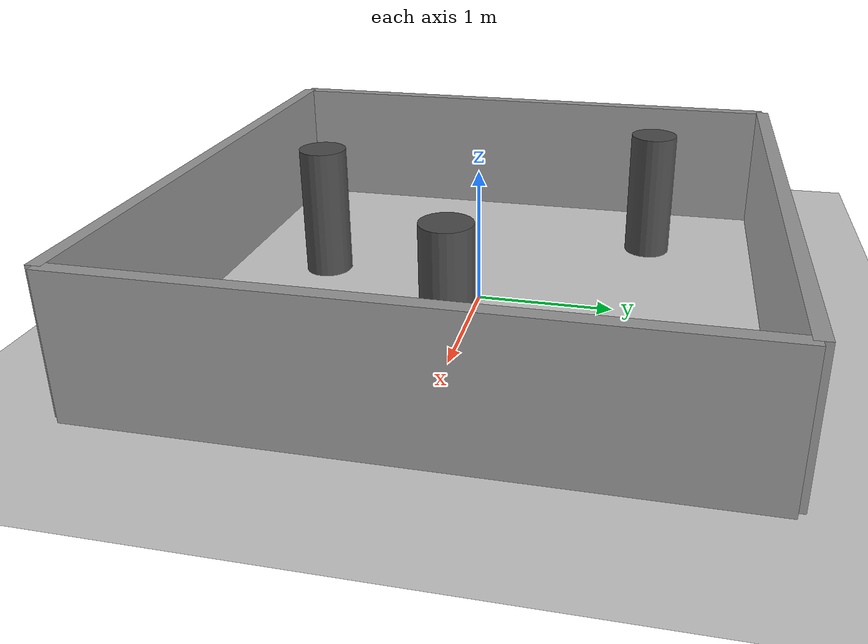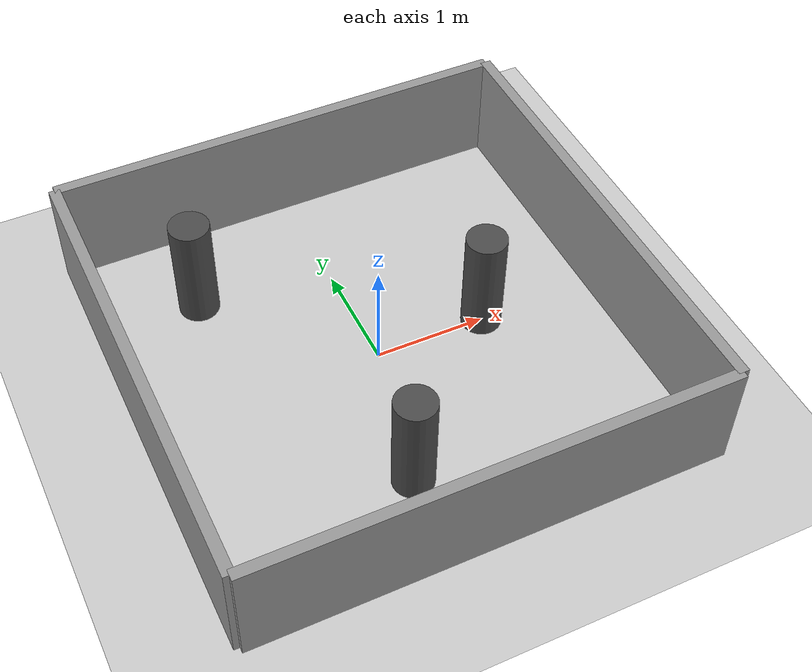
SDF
<?xml version="1.0" ?>
<sdf version="1.6">
  <world name="sparse">

    <physics type="ode">
      <real_time_update_rate>0.0</real_time_update_rate>
      <max_step_size>0.001</max_step_size>
      <real_time_factor>1.0</real_time_factor>
      <ode>
        <solver>
          <type>quick</type>
          <iters>150</iters>
          <precon_iters>0</precon_iters>
          <sor>1.400000</sor>
        </solver>
        <constraints>
          <cfm>0.00001</cfm>
          <erp>0.2</erp>
          <contact_max_correcting_vel>2000.000000</contact_max_correcting_vel>
          <contact_surface_layer>0.01000</contact_surface_layer>
        </constraints>
      </ode>
    </physics>

    <include><uri>model://sun</uri></include>
    <include><uri>model://ground_plane</uri></include>

    <!-- Bounding walls (4m x 4m arena) -->
    <model name="wall_north">
      <static>true</static><pose>0 2.1 0.5 0 0 0</pose>
      <link name="link">
        <collision name="col"><geometry><box><size>4.2 0.1 1.0</size></box></geometry></collision>
        <visual name="vis"><geometry><box><size>4.2 0.1 1.0</size></box></geometry>
          <material><script><name>Gazebo/Grey</name></script></material></visual>
      </link>
    </model>
    <model name="wall_south">
      <static>true</static><pose>0 -2.1 0.5 0 0 0</pose>
      <link name="link">
        <collision name="col"><geometry><box><size>4.2 0.1 1.0</size></box></geometry></collision>
        <visual name="vis"><geometry><box><size>4.2 0.1 1.0</size></box></geometry>
          <material><script><name>Gazebo/Grey</name></script></material></visual>
      </link>
    </model>
    <model name="wall_east">
      <static>true</static><pose>2.1 0 0.5 0 0 1.5708</pose>
      <link name="link">
        <collision name="col"><geometry><box><size>4.2 0.1 1.0</size></box></geometry></collision>
        <visual name="vis"><geometry><box><size>4.2 0.1 1.0</size></box></geometry>
          <material><script><name>Gazebo/Grey</name></script></material></visual>
      </link>
    </model>
    <model name="wall_west">
      <static>true</static><pose>-2.1 0 0.5 0 0 1.5708</pose>
      <link name="link">
        <collision name="col"><geometry><box><size>4.2 0.1 1.0</size></box></geometry></collision>
        <visual name="vis"><geometry><box><size>4.2 0.1 1.0</size></box></geometry>
          <material><script><name>Gazebo/Grey</name></script></material></visual>
      </link>
    </model>

    <!-- 3 obstáculos cilíndricos espalhados — ρ ≈ 0.10 -->
    <model name="obs_0">
      <static>true</static>
      <pose>-1.2 1.2 0.5 0 0 0</pose>
      <link name="link">
        <collision name="col"><geometry><cylinder><radius>0.18</radius><length>1.0</length></cylinder></geometry></collision>
        <visual name="vis"><geometry><cylinder><radius>0.18</radius><length>1.0</length></cylinder></geometry>
          <material><script><name>Gazebo/DarkGrey</name></script></material></visual>
      </link>
    </model>

    <model name="obs_1">
      <static>true</static>
      <pose>1.0 0.0 0.5 0 0 0</pose>
      <link name="link">
        <collision name="col"><geometry><cylinder><radius>0.18</radius><length>1.0</length></cylinder></geometry></collision>
        <visual name="vis"><geometry><cylinder><radius>0.18</radius><length>1.0</length></cylinder></geometry>
          <material><script><name>Gazebo/DarkGrey</name></script></material></visual>
      </link>
    </model>

    <model name="obs_2">
      <static>true</static>
      <pose>-0.3 -1.3 0.5 0 0 0</pose>
      <link name="link">
        <collision name="col"><geometry><cylinder><radius>0.18</radius><length>1.0</length></cylinder></geometry></collision>
        <visual name="vis"><geometry><cylinder><radius>0.18</radius><length>1.0</length></cylinder></geometry>
          <material><script><name>Gazebo/DarkGrey</name></script></material></visual>
      </link>
    </model>

    <gui fullscreen="0">
      <camera name="user_camera">
        <pose>0 0 8 0 1.5708 0</pose>
        <view_controller>orbit</view_controller>
      </camera>
    </gui>

  </world>
</sdf>
